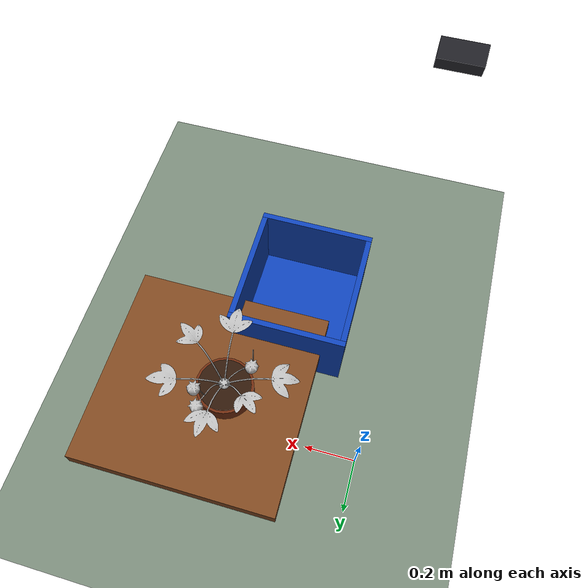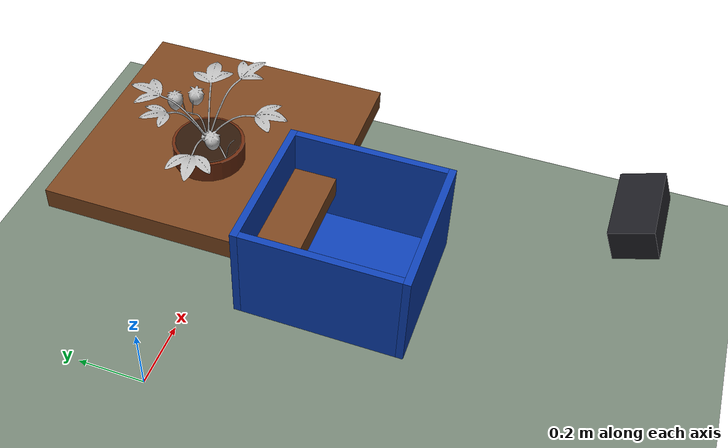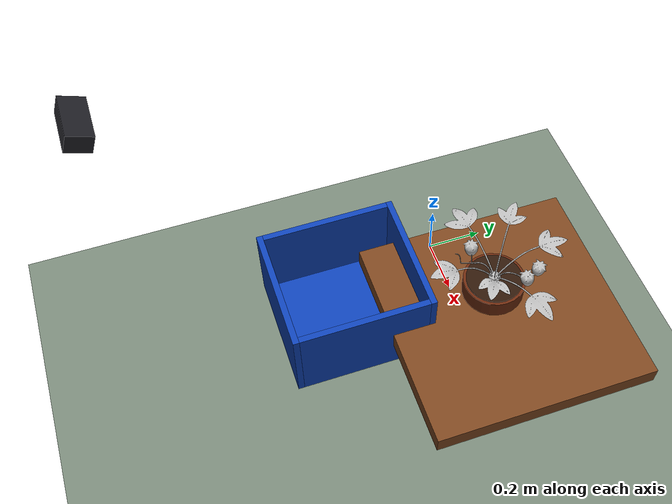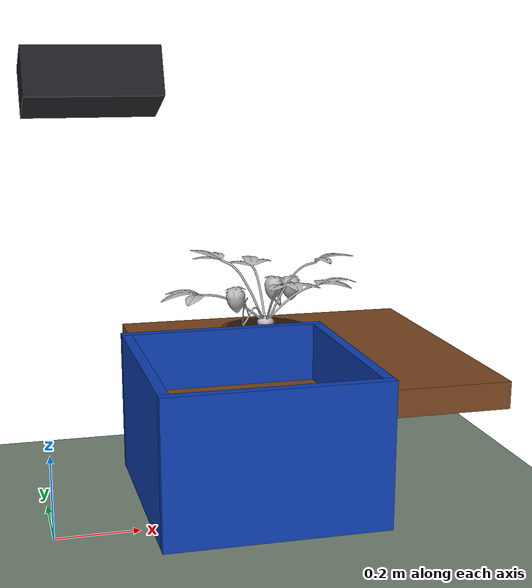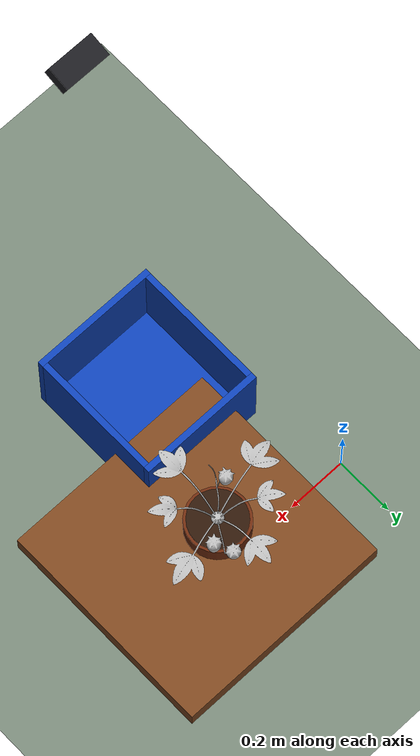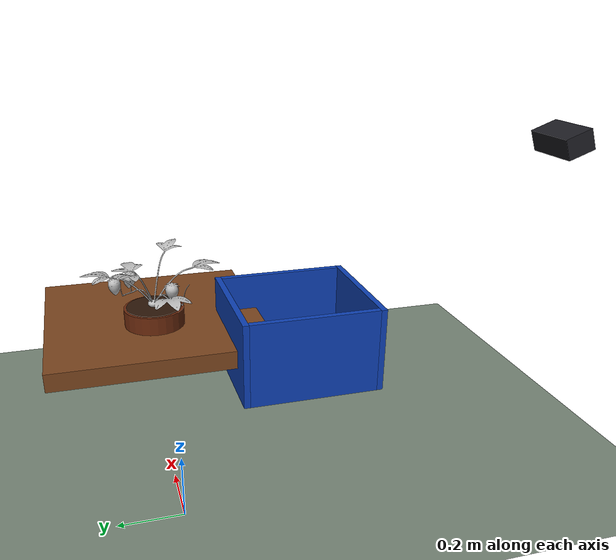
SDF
<?xml version="1.0"?>
<sdf version="1.10">
  <world name="strawberry_orchard">
    <physics name="1ms" type="dart">
      <max_step_size>0.001</max_step_size>
      <real_time_factor>1.0</real_time_factor>
    </physics>

    <plugin filename="gz-sim-physics-system"
            name="gz::sim::systems::Physics"/>
    <plugin filename="gz-sim-user-commands-system"
            name="gz::sim::systems::UserCommands"/>
    <plugin filename="gz-sim-scene-broadcaster-system"
            name="gz::sim::systems::SceneBroadcaster"/>
    <plugin filename="gz-sim-sensors-system"
            name="gz::sim::systems::Sensors">
      <render_engine>ogre2</render_engine>
    </plugin>
    <plugin filename="gz-sim-contact-system"
            name="gz::sim::systems::Contact"/>

    <scene>
      <ambient>0.45 0.45 0.45 1</ambient>
      <background>0.72 0.80 0.88 1</background>
      <shadows>true</shadows>
    </scene>

    <light type="directional" name="sun">
      <cast_shadows>true</cast_shadows>
      <pose>0 0 6 0 0 0</pose>
      <diffuse>0.90 0.90 0.90 1</diffuse>
      <specular>0.25 0.25 0.25 1</specular>
      <attenuation>
        <range>100</range>
        <constant>0.9</constant>
        <linear>0.01</linear>
        <quadratic>0.001</quadratic>
      </attenuation>
      <direction>-0.4 0.2 -0.9</direction>
    </light>

    <model name="ground_plane">
      <static>true</static>
      <link name="ground_link">
        <collision name="ground_collision">
          <geometry><plane><normal>0 0 1</normal><size>8 8</size></plane></geometry>
        </collision>
        <visual name="ground_visual">
          <geometry><plane><normal>0 0 1</normal><size>8 8</size></plane></geometry>
          <material><ambient>0.30 0.34 0.30 1</ambient><diffuse>0.46 0.52 0.46 1</diffuse></material>
        </visual>
      </link>
    </model>

    <!-- The Panda is supplied by the manipulation integration package. The
         table now supports a Blender-derived plant rather than floating fruit. -->
    <model name="work_table">
      <static>true</static>
      <link name="table_link">
        <collision name="table_collision">
          <pose>0.58 0 0.38 0 0 0</pose>
          <geometry><box><size>0.72 0.72 0.06</size></box></geometry>
        </collision>
        <visual name="table_visual">
          <pose>0.58 0 0.38 0 0 0</pose>
          <geometry><box><size>0.72 0.72 0.06</size></box></geometry>
          <material><ambient>0.24 0.13 0.06 1</ambient><diffuse>0.48 0.27 0.12 1</diffuse></material>
        </visual>
      </link>
    </model>

    <include>
      <uri>model://rgbd_camera</uri>
      <name>strawberry_rgbd_camera</name>
      <pose>0 -1.10 1.05 0 0.35 1.5707963268</pose>
    </include>

    <include>
      <uri>model://collection_bin</uri>
      <name>collection_bin</name>
      <pose>0 0 0 0 0 0</pose>
    </include>

    <!-- A shallow planter raises the crown above the conservative MoveIt table
         padding, leaving enough vertical clearance for a real gripper approach. -->
    <model name="strawberry_planter">
      <static>true</static>
      <link name="planter_link">
        <collision name="planter_collision">
          <pose>0.50 0 0.44 0 0 0</pose>
          <geometry><cylinder><radius>0.10</radius><length>0.06</length></cylinder></geometry>
        </collision>
        <visual name="planter_visual">
          <pose>0.50 0 0.44 0 0 0</pose>
          <geometry><cylinder><radius>0.10</radius><length>0.06</length></cylinder></geometry>
          <material><ambient>0.20 0.08 0.025 1</ambient><diffuse>0.42 0.16 0.05 1</diffuse></material>
        </visual>
        <visual name="soil_visual">
          <pose>0.50 0 0.471 0 0 0</pose>
          <geometry><cylinder><radius>0.091</radius><length>0.004</length></cylinder></geometry>
          <material><ambient>0.08 0.045 0.02 1</ambient><diffuse>0.18 0.09 0.035 1</diffuse></material>
        </visual>
      </link>
    </model>

    <include>
      <uri>model://strawberry_plant_v2</uri>
      <name>strawberry_plant</name>
      <pose>0.50 0.0 0.47 0 0 0</pose>
    </include>

    <include>
      <uri>model://strawberry_ripe</uri>
      <name>strawberry_1</name>
      <pose>0.419064753 -0.053479813 0.546111838 -0.069813050 -0.087266445 0.733038306</pose>
    </include>
    <include>
      <uri>model://strawberry_unripe</uri>
      <name>strawberry_2</name>
      <pose>0.550333202 0.118588343 0.532157422 -0.104719654 0.087266445 -0.418878973</pose>
    </include>
    <include>
      <uri>model://strawberry_ripe</uri>
      <name>strawberry_3</name>
      <pose>0.578895651 0.068192676 0.540231110 0.087266490 -0.122173049 0.314159304</pose>
    </include>
  </world>
</sdf>

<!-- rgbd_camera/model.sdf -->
<sdf version="1.10">
  <model name="strawberry_rgbd_camera">
    <static>true</static>
    <link name="strawberry_camera_link">
      <visual name="housing_visual">
        <geometry><box><size>0.08 0.16 0.06</size></box></geometry>
        <material><ambient>0.06 0.06 0.07 1</ambient><diffuse>0.12 0.12 0.14 1</diffuse></material>
      </visual>
      <sensor name="rgbd" type="rgbd_camera">
        <camera>
          <horizontal_fov>1.0471975512</horizontal_fov>
          <image>
            <width>640</width>
            <height>480</height>
            <format>R8G8B8</format>
          </image>
          <clip>
            <near>0.10</near>
            <far>5.0</far>
          </clip>
          <optical_frame_id>strawberry_camera_optical_frame</optical_frame_id>
        </camera>
        <always_on>true</always_on>
        <update_rate>30</update_rate>
        <visualize>true</visualize>
        <topic>/camera</topic>
        <gz_frame_id>strawberry_camera_optical_frame</gz_frame_id>
      </sensor>
    </link>
  </model>
</sdf>

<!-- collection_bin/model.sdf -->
<sdf version="1.10">
  <model name="collection_bin">
    <static>true</static>
    <link name="bin_link">
      <collision name="floor_collision">
        <pose>0.35 -0.45 0.26 0 0 0</pose>
        <geometry><box><size>0.38 0.42 0.02</size></box></geometry>
      </collision>
      <visual name="floor_visual">
        <pose>0.35 -0.45 0.26 0 0 0</pose>
        <geometry><box><size>0.38 0.42 0.02</size></box></geometry>
        <material><ambient>0.03 0.12 0.35 1</ambient><diffuse>0.05 0.25 0.70 1</diffuse></material>
      </visual>

      <collision name="left_wall_collision">
        <pose>0.15 -0.45 0.39 0 0 0</pose>
        <geometry><box><size>0.02 0.42 0.28</size></box></geometry>
      </collision>
      <visual name="left_wall_visual">
        <pose>0.15 -0.45 0.39 0 0 0</pose>
        <geometry><box><size>0.02 0.42 0.28</size></box></geometry>
        <material><ambient>0.03 0.12 0.35 1</ambient><diffuse>0.05 0.25 0.70 1</diffuse></material>
      </visual>

      <collision name="right_wall_collision">
        <pose>0.55 -0.45 0.39 0 0 0</pose>
        <geometry><box><size>0.02 0.42 0.28</size></box></geometry>
      </collision>
      <visual name="right_wall_visual">
        <pose>0.55 -0.45 0.39 0 0 0</pose>
        <geometry><box><size>0.02 0.42 0.28</size></box></geometry>
        <material><ambient>0.03 0.12 0.35 1</ambient><diffuse>0.05 0.25 0.70 1</diffuse></material>
      </visual>

      <collision name="front_wall_collision">
        <pose>0.35 -0.67 0.39 0 0 0</pose>
        <geometry><box><size>0.42 0.02 0.28</size></box></geometry>
      </collision>
      <visual name="front_wall_visual">
        <pose>0.35 -0.67 0.39 0 0 0</pose>
        <geometry><box><size>0.42 0.02 0.28</size></box></geometry>
        <material><ambient>0.03 0.12 0.35 1</ambient><diffuse>0.05 0.25 0.70 1</diffuse></material>
      </visual>

      <collision name="back_wall_collision">
        <pose>0.35 -0.23 0.39 0 0 0</pose>
        <geometry><box><size>0.42 0.02 0.28</size></box></geometry>
      </collision>
      <visual name="back_wall_visual">
        <pose>0.35 -0.23 0.39 0 0 0</pose>
        <geometry><box><size>0.42 0.02 0.28</size></box></geometry>
        <material><ambient>0.03 0.12 0.35 1</ambient><diffuse>0.05 0.25 0.70 1</diffuse></material>
      </visual>
    </link>
  </model>
</sdf>

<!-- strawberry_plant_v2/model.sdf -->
<sdf version="1.10">
  <model name="strawberry_plant_v2">
    <static>true</static>
    <link name="plant_link">
      <collision name="crown_collision">
        <pose>0 0 0.012 0 0 0</pose>
        <geometry>
          <cylinder><radius>0.020</radius><length>0.024</length></cylinder>
        </geometry>
      </collision>
      <visual name="plant_visual">
        <geometry>
          <mesh>
            <uri>model://strawberry_plant_v2/meshes/strawberry_plant_v2.obj</uri>
          </mesh>
        </geometry>
      </visual>
    </link>
  </model>
</sdf>

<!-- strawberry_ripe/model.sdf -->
<sdf version="1.10">
  <model name="strawberry_ripe">
    <static>false</static>
    <self_collide>false</self_collide>
    <link name="fruit_link">
      <gravity>false</gravity>
      <velocity_decay>
        <linear>0.5</linear>
        <angular>0.5</angular>
      </velocity_decay>
      <inertial>
        <mass>0.030</mass>
        <inertia>
          <ixx>0.0000081</ixx>
          <iyy>0.0000081</iyy>
          <izz>0.0000081</izz>
        </inertia>
      </inertial>
      <collision name="fruit_collision">
        <geometry><sphere><radius>0.026</radius></sphere></geometry>
        <surface>
          <friction>
            <ode><mu>1.0</mu><mu2>1.0</mu2></ode>
          </friction>
        </surface>
      </collision>
      <visual name="fruit_visual">
        <geometry>
          <mesh>
            <uri>model://strawberry_ripe/meshes/strawberry_ripe_visual_v2.obj</uri>
          </mesh>
        </geometry>
      </visual>
      <sensor name="fruit_contact_sensor" type="contact">
        <always_on>true</always_on>
        <update_rate>100</update_rate>
        <contact>
          <collision>fruit_collision</collision>
          <topic>/strawberry/sim/fruit_contacts</topic>
        </contact>
      </sensor>
    </link>
    <plugin filename="gz-sim-pose-publisher-system"
            name="gz::sim::systems::PosePublisher">
      <publish_link_pose>false</publish_link_pose>
      <publish_visual_pose>false</publish_visual_pose>
      <publish_collision_pose>false</publish_collision_pose>
      <publish_sensor_pose>false</publish_sensor_pose>
      <publish_model_pose>true</publish_model_pose>
      <use_pose_vector_msg>true</use_pose_vector_msg>
      <update_frequency>60</update_frequency>
    </plugin>
  </model>
</sdf>

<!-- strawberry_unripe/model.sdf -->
<sdf version="1.10">
  <model name="strawberry_unripe">
    <static>false</static>
    <self_collide>false</self_collide>
    <link name="fruit_link">
      <gravity>false</gravity>
      <velocity_decay>
        <linear>0.5</linear>
        <angular>0.5</angular>
      </velocity_decay>
      <inertial>
        <mass>0.030</mass>
        <inertia>
          <ixx>0.0000081</ixx>
          <iyy>0.0000081</iyy>
          <izz>0.0000081</izz>
        </inertia>
      </inertial>
      <collision name="fruit_collision">
        <geometry><sphere><radius>0.026</radius></sphere></geometry>
        <surface>
          <friction>
            <ode><mu>1.0</mu><mu2>1.0</mu2></ode>
          </friction>
        </surface>
      </collision>
      <visual name="fruit_visual">
        <geometry>
          <mesh>
            <uri>model://strawberry_unripe/meshes/strawberry_unripe_visual_v2.obj</uri>
          </mesh>
        </geometry>
      </visual>
      <sensor name="fruit_contact_sensor" type="contact">
        <always_on>true</always_on>
        <update_rate>100</update_rate>
        <contact>
          <collision>fruit_collision</collision>
          <topic>/strawberry/sim/fruit_contacts</topic>
        </contact>
      </sensor>
    </link>
    <plugin filename="gz-sim-pose-publisher-system"
            name="gz::sim::systems::PosePublisher">
      <publish_link_pose>false</publish_link_pose>
      <publish_visual_pose>false</publish_visual_pose>
      <publish_collision_pose>false</publish_collision_pose>
      <publish_sensor_pose>false</publish_sensor_pose>
      <publish_model_pose>true</publish_model_pose>
      <use_pose_vector_msg>true</use_pose_vector_msg>
      <update_frequency>60</update_frequency>
    </plugin>
  </model>
</sdf>
